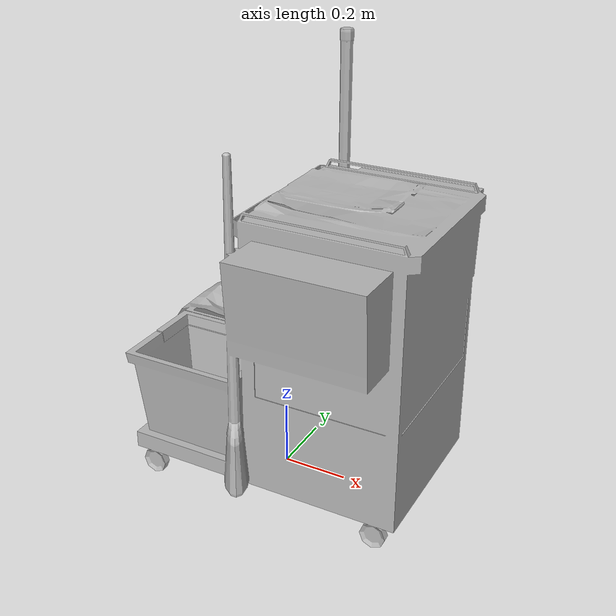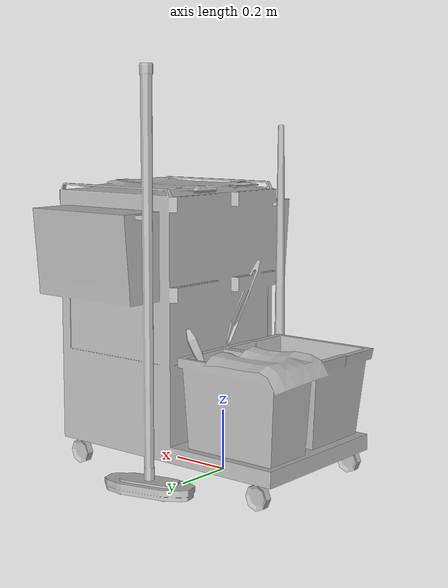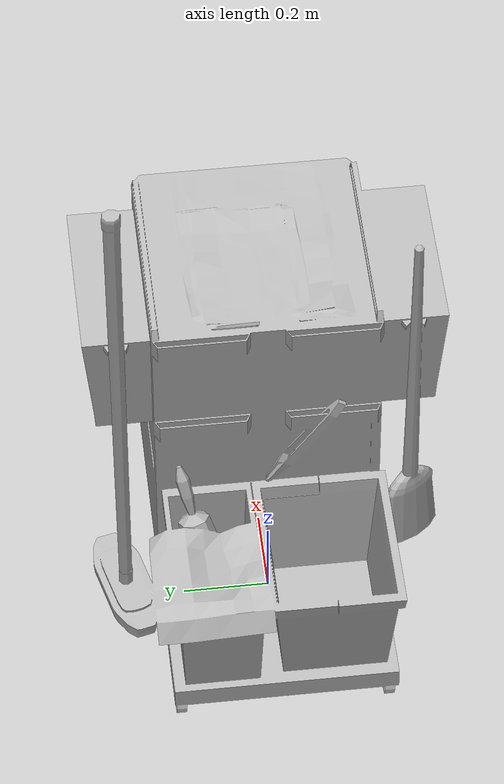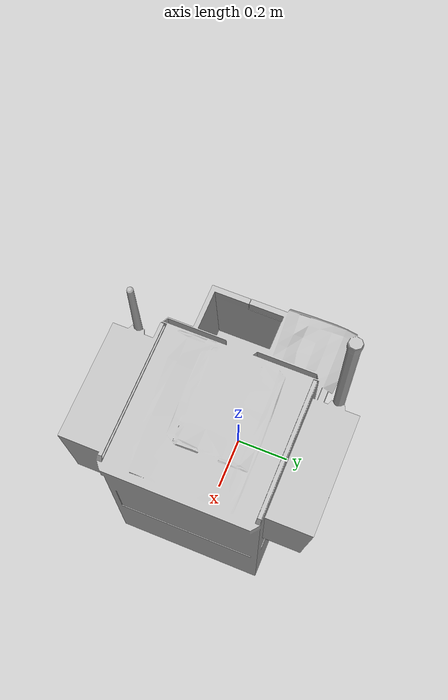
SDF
<?xml version="1.0" ?>
<sdf version="1.5">
  <model name="MopCart2">
    <link name="link">
      <pose>0 0 0 0 0 0</pose>

        <visual name="visual">
          <geometry>
            <mesh><uri>model://MopCart2/meshes/MopCart2.obj</uri></mesh>
          </geometry>
        </visual>

        <collision name="collision">
          <geometry>
            <mesh><uri>model://MopCart2/meshes/MopCart2.obj</uri></mesh>
          </geometry>
        </collision>

    </link>
  </model>
</sdf>
